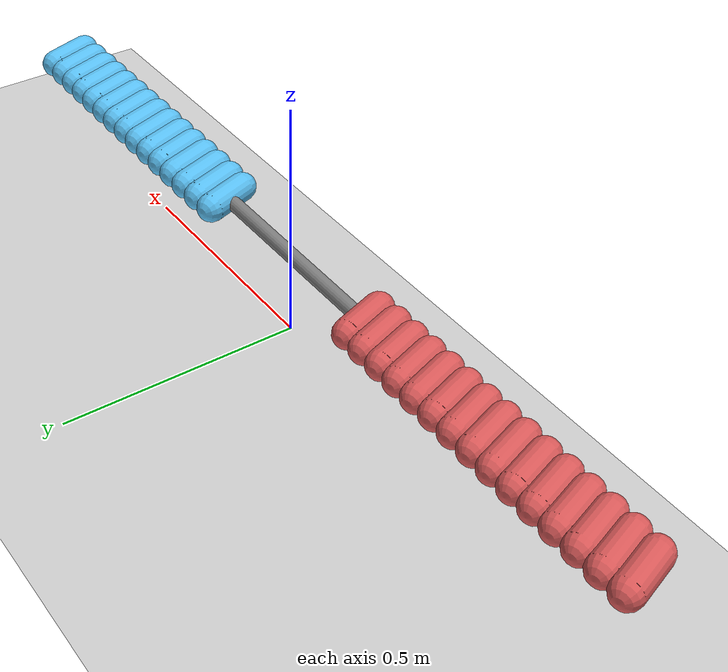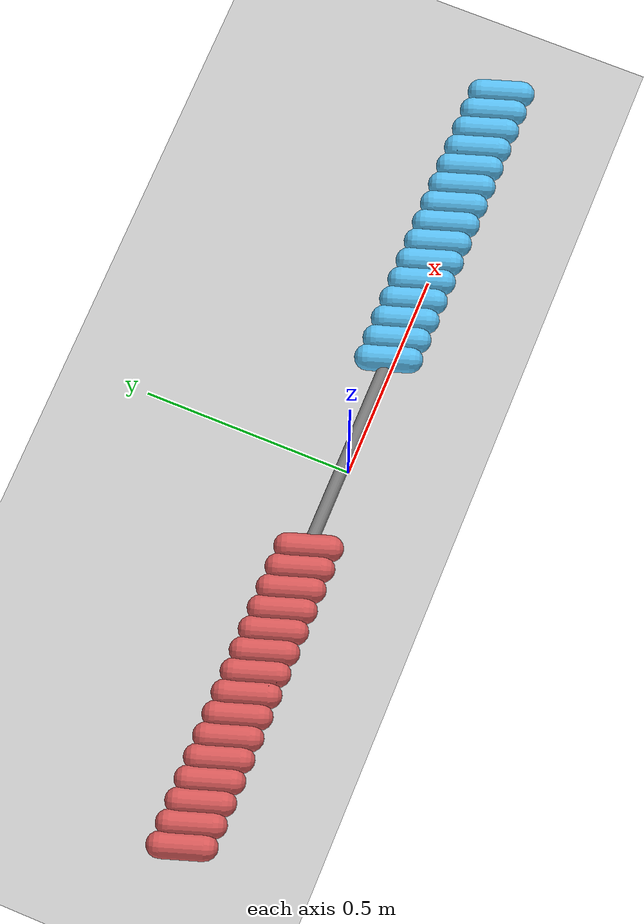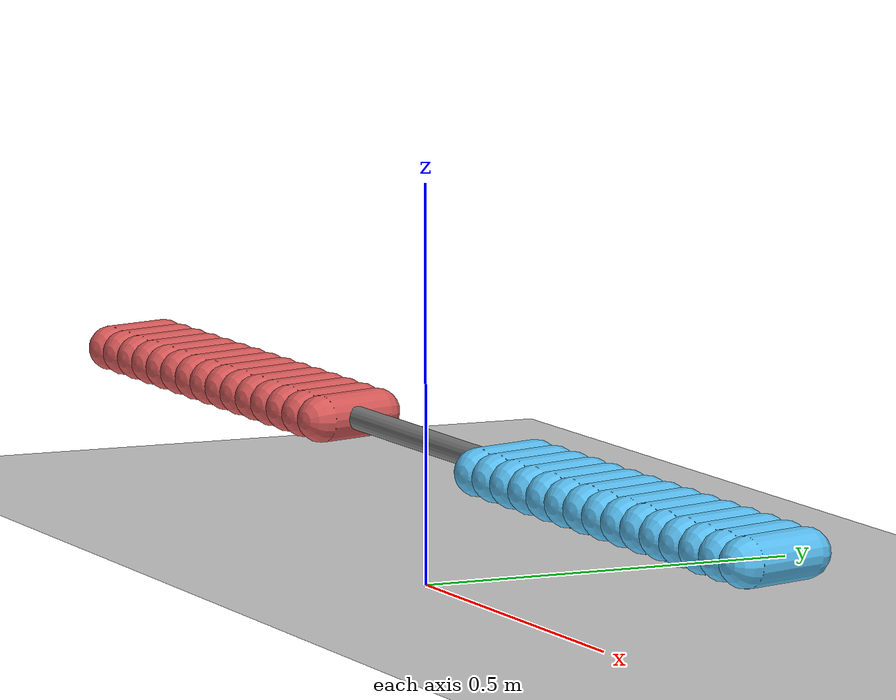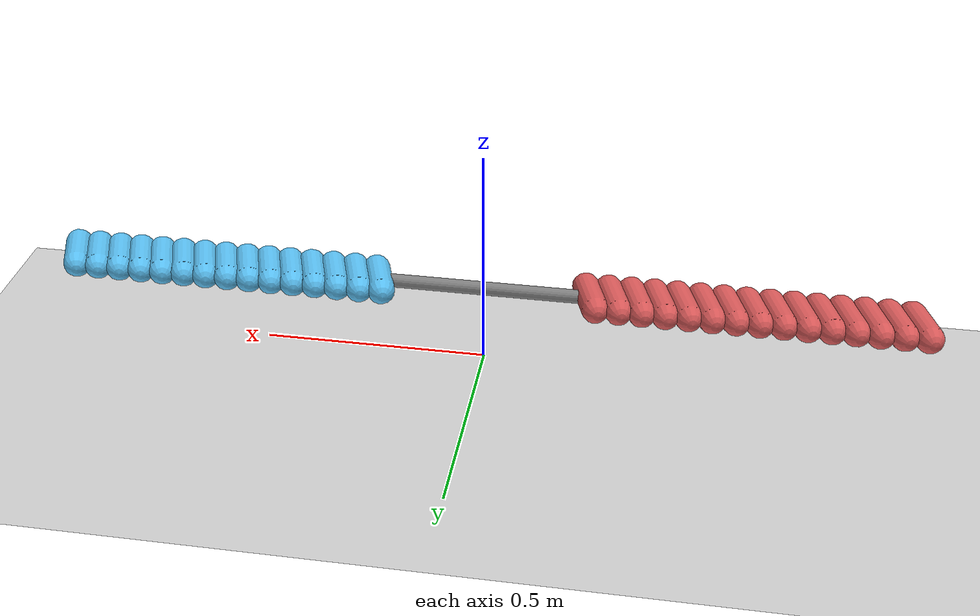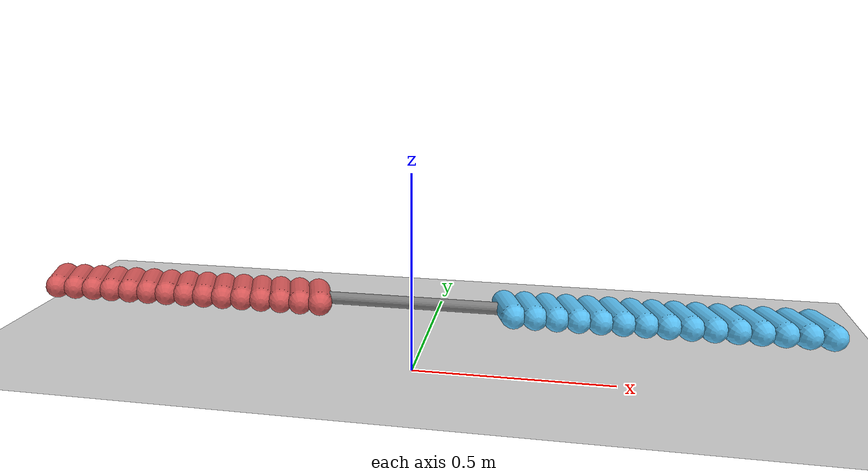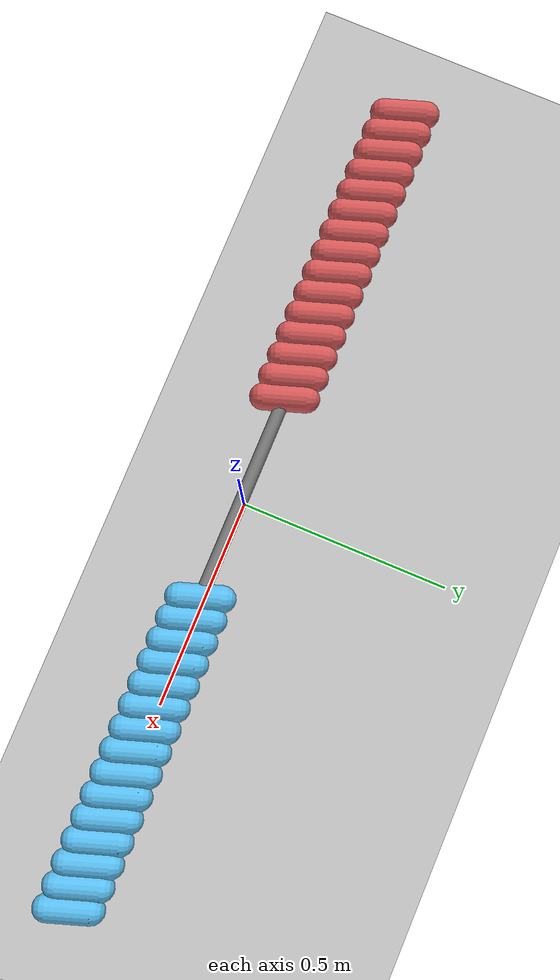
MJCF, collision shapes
<mujoco model="simple_screw_snake">
  <compiler angle="degree" coordinate="local" autolimits="true" inertiafromgeom="true"/>
  <option timestep="0.001" gravity="0 0 -9.81" integrator="implicitfast" iterations="100" solver="Newton"/>

  <default>
    <geom rgba="0.8 0.8 0.8 1" condim="6" friction="6.0 0.01 0.002"
          solref="0.003 1" solimp="0.96 0.96 0.01"/>
    <joint armature="0.001" damping="0.05"/>
    <motor ctrllimited="false"/>

    <!-- Sand-specific defaults -->
    <default class="sand">
      <geom friction="0.9 0.12 0.05" solimp="0.8 0.8 0.01" solref="0.003 1"/>
    </default>
  </default>

  <asset>
    <!-- CAD meshes -->
    <mesh name="cad_left"  file="NEW_SIMPLIFY_TESTER_REV_A.stl"  scale="0.01 0.01 0.01"/>
    <mesh name="cad_right" file="NEW_TESTER_REV_B.stl"  scale="0.01 0.01 0.01"/>

    <!-- Simple checker texture for plane (default) -->
    <texture name="texplane" type="2d" builtin="checker" rgb1=".2 .3 .4" rgb2=".1 0.15 0.2"
             width="512" height="512" mark="cross" markrgb=".8 .8 .8"/>
    <material name="matplane" reflectance="0.3" texture="texplane" texrepeat="10 10" texuniform="true"/>

    <!-- Sandy ground texture -->
    <texture name="texsand" type="2d" builtin="flat" rgb1=".8 .7 .5"
             width="512" height="512" mark="random" markrgb=".7 .6 .4"/>
    <material name="matsand" reflectance="0.1" texture="texsand" texrepeat="5 5" texuniform="true"/>
  </asset>

  <worldbody>
    <!-- Bright lights -->
    <light directional="true" diffuse="0.8 0.8 0.8" specular="0.3 0.3 0.3" pos="0 0 5" dir="0 0 -1"/>
    <light directional="true" diffuse="0.4 0.4 0.4" specular="0.1 0.1 0.1" pos="3 3 4" dir="-1 -1 -1"/>
    <light directional="true" diffuse="0.4 0.4 0.4" specular="0.1 0.1 0.1" pos="-3 -3 4" dir="1 1 -1"/>

    <!-- Ground plane with visible checker pattern -->
    <geom name="ground" type="plane" size="0 0 1" material="matplane" friction="6.0 0.01 0.002"/>

    <!-- Snake base assembly -->
    <body name="snake_base" pos="0 0 0.18">
      <!-- Allow translation in X, Y, and restrict Z to stay on ground -->
      <joint name="slide_x" type="slide" axis="1 0 0" limited="false" damping="0.2"/>
      <joint name="slide_y" type="slide" axis="0 1 0" limited="false" damping="0.8"/>
      <joint name="slide_z" type="slide" axis="0 0 1" limited="true" range="0.17 0.19" damping="2.0"/>

      <!-- Central chassis -->
      <geom name="chassis" type="box" size="0.05 0.06 0.02" pos="0 0 0.03"
            rgba="0.1 0.15 0.2 0" mass="1.0" contype="0" conaffinity="0"/>

      <!-- Hinge pin -->
      <geom name="hinge_pin" type="capsule" fromto="-0.3 0 0 0.3 0 0" size="0.015"
            rgba="0.5 0.5 0.5 1" contype="0" conaffinity="0" mass="0.05"/>

      <!-- RIGHT SCREW (red) - rotates one direction -->
      <body name="screw_right" pos="-0.6 0 0">
        <joint name="jr" type="hinge" axis="1 0 0" pos="0 0 0"
               limited="false" damping="0.01" frictionloss="0.001"/>

        <!-- CAD visual mesh (visual only) -->
        <geom name="cad_right_vis" type="mesh" mesh="cad_right"
              pos="0.6 0 0"
              euler="0 90 0" rgba="0.85 0.2 0.2 1"
              contype="0" conaffinity="0" mass="0"/>

        <!-- Core cylinder for mass -->
        <geom name="core_right" type="cylinder" fromto="-0.4 0 0 0.4 0 0" size="0.03"
              rgba="0.85 0.2 0.2 0" mass="0.4" contype="0" conaffinity="0"/>

        <!-- Angled ribs for Y thrust - REVERSED to move in -Y direction with +1 rotation (right screw, invisible) -->
        <geom type="capsule" fromto="-0.32 -0.045 0 -0.35 0.045 0" size="0.03" rgba="0.85 0.35 0.35 0" friction="6.0 0.01 0.002" mass="0.01"/>
        <geom type="capsule" fromto="-0.27 -0.045 0 -0.3 0.045 0" size="0.03" rgba="0.85 0.35 0.35 0" friction="6.0 0.01 0.002" mass="0.01"/>
        <geom type="capsule" fromto="-0.22 -0.045 0 -0.25 0.045 0" size="0.03" rgba="0.85 0.35 0.35 0" friction="6.0 0.01 0.002" mass="0.01"/>
        <geom type="capsule" fromto="-0.17 -0.045 0 -0.2 0.045 0" size="0.03" rgba="0.85 0.35 0.35 0" friction="6.0 0.01 0.002" mass="0.01"/>
        <geom type="capsule" fromto="-0.12 -0.045 0 -0.15 0.045 0" size="0.03" rgba="0.85 0.35 0.35 0" friction="6.0 0.01 0.002" mass="0.01"/>
        <geom type="capsule" fromto="-0.07 -0.045 0 -0.1 0.045 0" size="0.03" rgba="0.85 0.35 0.35 0" friction="6.0 0.01 0.002" mass="0.01"/>
        <geom type="capsule" fromto="-0.02 -0.045 0 -0.05 0.045 0" size="0.03" rgba="0.85 0.35 0.35 0" friction="6.0 0.01 0.002" mass="0.01"/>
        <geom type="capsule" fromto="0.03 -0.045 0 0.0 0.045 0" size="0.03" rgba="0.85 0.35 0.35 0" friction="6.0 0.01 0.002" mass="0.01"/>
        <geom type="capsule" fromto="0.08 -0.045 0 0.05 0.045 0" size="0.03" rgba="0.85 0.35 0.35 0" friction="6.0 0.01 0.002" mass="0.01"/>
        <geom type="capsule" fromto="0.13 -0.045 0 0.1 0.045 0" size="0.03" rgba="0.85 0.35 0.35 0" friction="6.0 0.01 0.002" mass="0.01"/>
        <geom type="capsule" fromto="0.18 -0.045 0 0.15 0.045 0" size="0.03" rgba="0.85 0.35 0.35 0" friction="6.0 0.01 0.002" mass="0.01"/>
        <geom type="capsule" fromto="0.23 -0.045 0 0.2 0.045 0" size="0.03" rgba="0.85 0.35 0.35 0" friction="6.0 0.01 0.002" mass="0.01"/>
        <geom type="capsule" fromto="0.28 -0.045 0 0.25 0.045 0" size="0.03" rgba="0.85 0.35 0.35 0" friction="6.0 0.01 0.002" mass="0.01"/>
        <geom type="capsule" fromto="0.33 -0.045 0 0.3 0.045 0" size="0.03" rgba="0.85 0.35 0.35 0" friction="6.0 0.01 0.002" mass="0.01"/>
        <geom type="capsule" fromto="0.38 -0.045 0 0.35 0.045 0" size="0.03" rgba="0.85 0.35 0.35 0" friction="6.0 0.01 0.002" mass="0.01"/>
      </body>

      <!-- LEFT SCREW (blue) - rotates opposite direction -->
      <body name="screw_left" pos="0.6 0 0">
        <joint name="jl" type="hinge" axis="1 0 0" pos="0 0 0"
               limited="false" damping="0.01" frictionloss="0.001"/>

        <!-- CAD visual mesh (visual only, flipped) -->
        <geom name="cad_left_vis" type="mesh" mesh="cad_left"
              pos="-0.6 0 0"
              euler="0 -90 0" rgba="0.2 0.65 0.95 1"
              contype="0" conaffinity="0" mass="0"/>

        <!-- Core cylinder for mass -->
        <geom name="core_left" type="cylinder" fromto="-0.4 0 0 0.4 0 0" size="0.03"
              rgba="0.2 0.65 0.95 0" mass="0.4" contype="0" conaffinity="0"/>

        <!-- Angled ribs for Y thrust - REVERSED to move in -Y direction with +1 rotation (left screw, invisible, mirrored) -->
        <geom type="capsule" fromto="-0.35 -0.045 0 -0.38 0.045 0" size="0.03" rgba="0.35 0.75 0.95 0" friction="6.0 0.01 0.002" mass="0.01"/>
        <geom type="capsule" fromto="-0.3 -0.045 0 -0.33 0.045 0" size="0.03" rgba="0.35 0.75 0.95 0" friction="6.0 0.01 0.002" mass="0.01"/>
        <geom type="capsule" fromto="-0.25 -0.045 0 -0.28 0.045 0" size="0.03" rgba="0.35 0.75 0.95 0" friction="6.0 0.01 0.002" mass="0.01"/>
        <geom type="capsule" fromto="-0.2 -0.045 0 -0.23 0.045 0" size="0.03" rgba="0.35 0.75 0.95 0" friction="6.0 0.01 0.002" mass="0.01"/>
        <geom type="capsule" fromto="-0.15 -0.045 0 -0.18 0.045 0" size="0.03" rgba="0.35 0.75 0.95 0" friction="6.0 0.01 0.002" mass="0.01"/>
        <geom type="capsule" fromto="-0.1 -0.045 0 -0.13 0.045 0" size="0.03" rgba="0.35 0.75 0.95 0" friction="6.0 0.01 0.002" mass="0.01"/>
        <geom type="capsule" fromto="-0.05 -0.045 0 -0.08 0.045 0" size="0.03" rgba="0.35 0.75 0.95 0" friction="6.0 0.01 0.002" mass="0.01"/>
        <geom type="capsule" fromto="0.0 -0.045 0 -0.03 0.045 0" size="0.03" rgba="0.35 0.75 0.95 0" friction="6.0 0.01 0.002" mass="0.01"/>
        <geom type="capsule" fromto="0.05 -0.045 0 0.02 0.045 0" size="0.03" rgba="0.35 0.75 0.95 0" friction="6.0 0.01 0.002" mass="0.01"/>
        <geom type="capsule" fromto="0.1 -0.045 0 0.07 0.045 0" size="0.03" rgba="0.35 0.75 0.95 0" friction="6.0 0.01 0.002" mass="0.01"/>
        <geom type="capsule" fromto="0.15 -0.045 0 0.12 0.045 0" size="0.03" rgba="0.35 0.75 0.95 0" friction="6.0 0.01 0.002" mass="0.01"/>
        <geom type="capsule" fromto="0.2 -0.045 0 0.17 0.045 0" size="0.03" rgba="0.35 0.75 0.95 0" friction="6.0 0.01 0.002" mass="0.01"/>
        <geom type="capsule" fromto="0.25 -0.045 0 0.22 0.045 0" size="0.03" rgba="0.35 0.75 0.95 0" friction="6.0 0.01 0.002" mass="0.01"/>
        <geom type="capsule" fromto="0.3 -0.045 0 0.27 0.045 0" size="0.03" rgba="0.35 0.75 0.95 0" friction="6.0 0.01 0.002" mass="0.01"/>
        <geom type="capsule" fromto="0.35 -0.045 0 0.32 0.045 0" size="0.03" rgba="0.35 0.75 0.95 0" friction="6.0 0.01 0.002" mass="0.01"/>
      </body>
    </body>
  </worldbody>

  <!-- Motors to spin the screws -->
  <actuator>
    <velocity name="motor_r" joint="jr" kv="150"/>
    <velocity name="motor_l" joint="jl" kv="150"/>
  </actuator>

  <visual>
    <map znear="0.005" zfar="100"/>
    <quality shadowsize="4096"/>
    <headlight ambient="0.6 0.6 0.6" diffuse="0.8 0.8 0.8" specular="0.3 0.3 0.3"/>
  </visual>
</mujoco>
